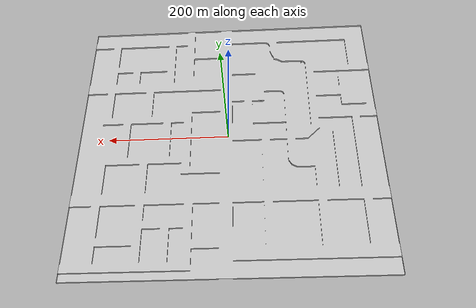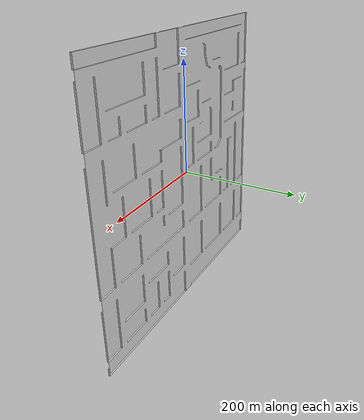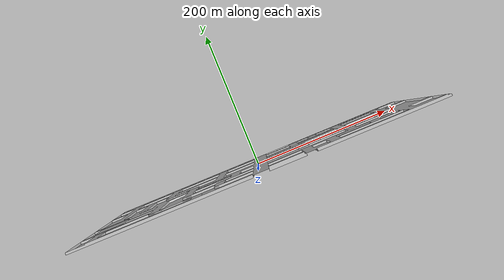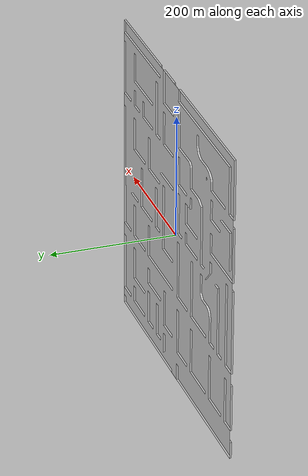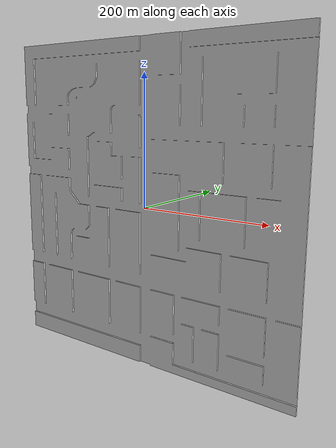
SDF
<?xml version="1.0"?>
<sdf version="1.9">
    <model name="cityLarge_harmonic">
        <pose>0 0 0 0 0 0</pose>
        <static>true</static>

        <link name="city">
            <pose>0 0 0 0 0 0</pose>

            <collision name="collision">
                <pose>0 0 0 1.5708 0 0</pose>
                <geometry>
                    <mesh>
                        <uri>model://cityLarge_harmonic/meshes/city.dae</uri>
                        <scale>1 1 1</scale>
                    </mesh>
                </geometry>
                <surface>
                    <contact>
                        <collide_without_contact>false</collide_without_contact>
                        <collide_without_contact_bitmask>1</collide_without_contact_bitmask>
                    </contact>
                    <friction>
                        <ode>
                            <mu>1.0</mu>
                            <mu2>1.0</mu2>
                        </ode>
                    </friction>
                </surface>
            </collision>

            <visual name="visual">
                <pose>0 0 0 1.5708 0 0</pose>
                <geometry>
                    <mesh>
                        <uri>model://cityLarge_harmonic/meshes/city.dae</uri>
                        <scale>1 1 1</scale>
                    </mesh>
                </geometry>
                <material>
                    <ambient>0.8 0.8 0.8 1.0</ambient>
                    <diffuse>0.8 0.8 0.8 1.0</diffuse>
                    <specular>0.1 0.1 0.1 1.0</specular>
                </material>
            </visual>

            <inertial>
                <mass>1000.0</mass>
                <inertia>
                    <ixx>1.0</ixx>
                    <ixy>0.0</ixy>
                    <ixz>0.0</ixz>
                    <iyy>1.0</iyy>
                    <iyz>0.0</iyz>
                    <izz>1.0</izz>
                </inertia>
            </inertial>
        </link>
    </model>
</sdf>
